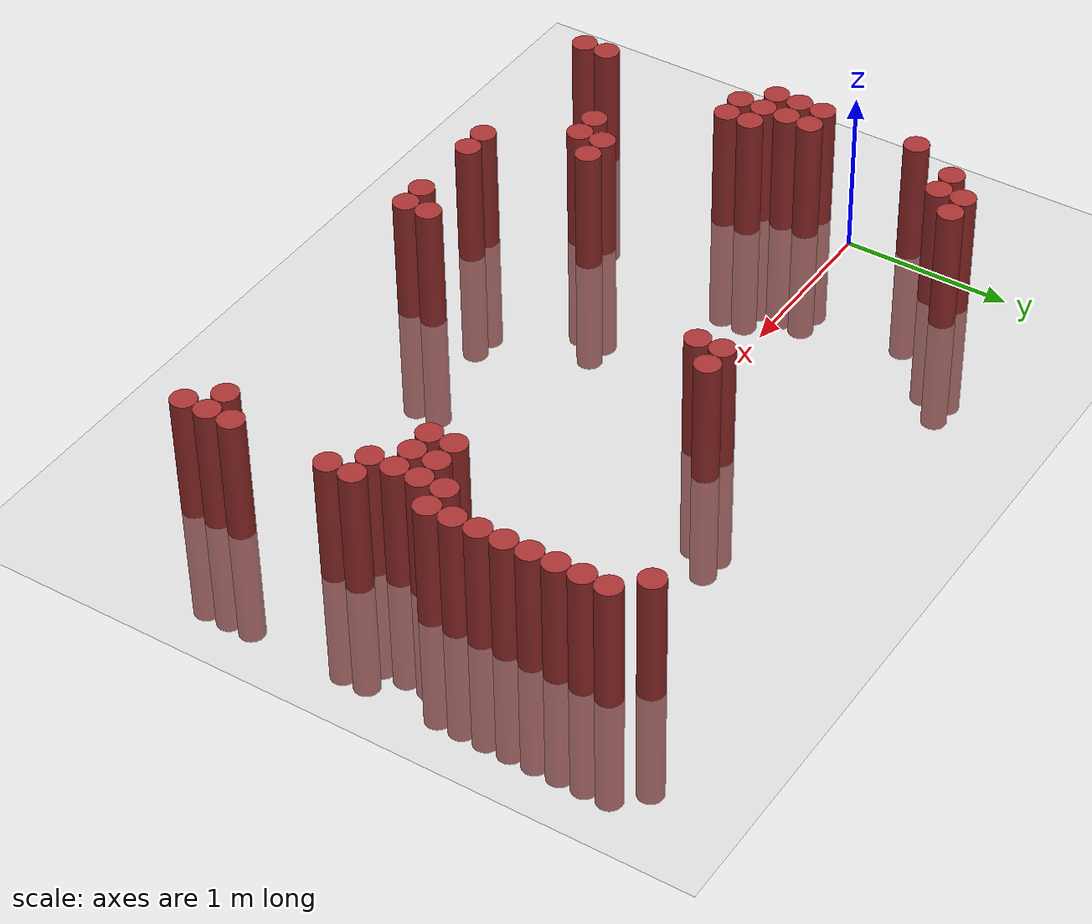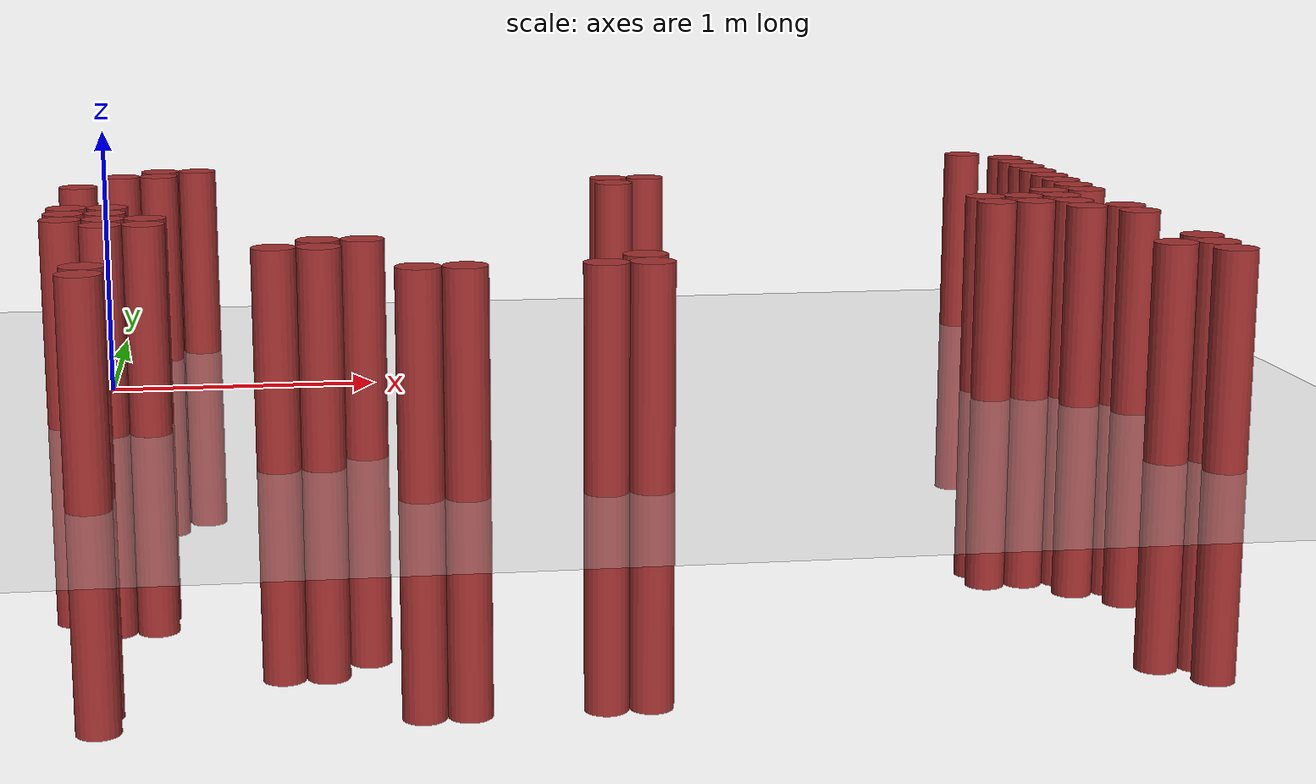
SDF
<sdf version="1.6">
 <world name="default">
  <model name="ground_plane">
   <static>1</static>
   <link name="link">
    <collision name="collision">
     <geometry><plane><normal>0 0 1</normal><size>100 100</size></plane></geometry>
     <surface><friction><ode><mu>100</mu><mu2>50</mu2></ode></friction></surface>
    </collision>
    <visual name="visual">
     <cast_shadows>0</cast_shadows>
     <geometry><plane><normal>0 0 1</normal><size>100 100</size></plane></geometry>
     <material>
      <script><uri>file://media/materials/scripts/gazebo.material</uri><name>Gazebo/Grey</name></script>
     </material>
    </visual>
   </link>
  </model>
  <model name="unit_cylinder_417">
   <static>1</static>
   <pose>-0.125000 -0.575000 0.000000 0.000000 0.000000 0.000000</pose>
   <link name="link">
    <inertial>
     <mass>1</mass>
     <inertia><ixx>0.145833</ixx><ixy>0</ixy><ixz>0</ixz><iyy>0.145833</iyy><iyz>0</iyz><izz>0.125</izz></inertia>
    </inertial>
    <collision name="collision">
     <geometry><cylinder><radius>0.075000</radius><length>1.5</length></cylinder></geometry>
    </collision>
    <visual name="visual">
     <geometry><cylinder><radius>0.075000</radius><length>1.5</length></cylinder></geometry>
     <material>
      <ambient>0.648000 0.192000 0.192000 1</ambient>
      <diffuse>0.648000 0.192000 0.192000 1</diffuse>
     </material>
     <material>
      <script><name>Gazebo/Grey</name><uri>file://media/materials/scripts/gazebo.material</uri></script>
     </material>
    </visual>
   </link>
  </model>
  <model name="unit_cylinder_418">
   <static>1</static>
   <pose>-0.125000 -0.425000 0.000000 0.000000 0.000000 0.000000</pose>
   <link name="link">
    <inertial>
     <mass>1</mass>
     <inertia><ixx>0.145833</ixx><ixy>0</ixy><ixz>0</ixz><iyy>0.145833</iyy><iyz>0</iyz><izz>0.125</izz></inertia>
    </inertial>
    <collision name="collision">
     <geometry><cylinder><radius>0.075000</radius><length>1.5</length></cylinder></geometry>
    </collision>
    <visual name="visual">
     <geometry><cylinder><radius>0.075000</radius><length>1.5</length></cylinder></geometry>
     <material>
      <ambient>0.648000 0.192000 0.192000 1</ambient>
      <diffuse>0.648000 0.192000 0.192000 1</diffuse>
     </material>
     <material>
      <script><name>Gazebo/Grey</name><uri>file://media/materials/scripts/gazebo.material</uri></script>
     </material>
    </visual>
   </link>
  </model>
  <model name="unit_cylinder_419">
   <static>1</static>
   <pose>-0.125000 -0.275000 0.000000 0.000000 0.000000 0.000000</pose>
   <link name="link">
    <inertial>
     <mass>1</mass>
     <inertia><ixx>0.145833</ixx><ixy>0</ixy><ixz>0</ixz><iyy>0.145833</iyy><iyz>0</iyz><izz>0.125</izz></inertia>
    </inertial>
    <collision name="collision">
     <geometry><cylinder><radius>0.075000</radius><length>1.5</length></cylinder></geometry>
    </collision>
    <visual name="visual">
     <geometry><cylinder><radius>0.075000</radius><length>1.5</length></cylinder></geometry>
     <material>
      <ambient>0.648000 0.192000 0.192000 1</ambient>
      <diffuse>0.648000 0.192000 0.192000 1</diffuse>
     </material>
     <material>
      <script><name>Gazebo/Grey</name><uri>file://media/materials/scripts/gazebo.material</uri></script>
     </material>
    </visual>
   </link>
  </model>
  <model name="unit_cylinder_420">
   <static>1</static>
   <pose>-0.125000 0.325000 0.000000 0.000000 0.000000 0.000000</pose>
   <link name="link">
    <inertial>
     <mass>1</mass>
     <inertia><ixx>0.145833</ixx><ixy>0</ixy><ixz>0</ixz><iyy>0.145833</iyy><iyz>0</iyz><izz>0.125</izz></inertia>
    </inertial>
    <collision name="collision">
     <geometry><cylinder><radius>0.075000</radius><length>1.5</length></cylinder></geometry>
    </collision>
    <visual name="visual">
     <geometry><cylinder><radius>0.075000</radius><length>1.5</length></cylinder></geometry>
     <material>
      <ambient>0.648000 0.192000 0.192000 1</ambient>
      <diffuse>0.648000 0.192000 0.192000 1</diffuse>
     </material>
     <material>
      <script><name>Gazebo/Grey</name><uri>file://media/materials/scripts/gazebo.material</uri></script>
     </material>
    </visual>
   </link>
  </model>
  <model name="unit_cylinder_428">
   <static>1</static>
   <pose>0.025000 -1.775000 0.000000 0.000000 0.000000 0.000000</pose>
   <link name="link">
    <inertial>
     <mass>1</mass>
     <inertia><ixx>0.145833</ixx><ixy>0</ixy><ixz>0</ixz><iyy>0.145833</iyy><iyz>0</iyz><izz>0.125</izz></inertia>
    </inertial>
    <collision name="collision">
     <geometry><cylinder><radius>0.075000</radius><length>1.5</length></cylinder></geometry>
    </collision>
    <visual name="visual">
     <geometry><cylinder><radius>0.075000</radius><length>1.5</length></cylinder></geometry>
     <material>
      <ambient>0.648000 0.192000 0.192000 1</ambient>
      <diffuse>0.648000 0.192000 0.192000 1</diffuse>
     </material>
     <material>
      <script><name>Gazebo/Grey</name><uri>file://media/materials/scripts/gazebo.material</uri></script>
     </material>
    </visual>
   </link>
  </model>
  <model name="unit_cylinder_429">
   <static>1</static>
   <pose>0.025000 -1.625000 0.000000 0.000000 0.000000 0.000000</pose>
   <link name="link">
    <inertial>
     <mass>1</mass>
     <inertia><ixx>0.145833</ixx><ixy>0</ixy><ixz>0</ixz><iyy>0.145833</iyy><iyz>0</iyz><izz>0.125</izz></inertia>
    </inertial>
    <collision name="collision">
     <geometry><cylinder><radius>0.075000</radius><length>1.5</length></cylinder></geometry>
    </collision>
    <visual name="visual">
     <geometry><cylinder><radius>0.075000</radius><length>1.5</length></cylinder></geometry>
     <material>
      <ambient>0.648000 0.192000 0.192000 1</ambient>
      <diffuse>0.648000 0.192000 0.192000 1</diffuse>
     </material>
     <material>
      <script><name>Gazebo/Grey</name><uri>file://media/materials/scripts/gazebo.material</uri></script>
     </material>
    </visual>
   </link>
  </model>
  <model name="unit_cylinder_430">
   <static>1</static>
   <pose>0.025000 -0.725000 0.000000 0.000000 0.000000 0.000000</pose>
   <link name="link">
    <inertial>
     <mass>1</mass>
     <inertia><ixx>0.145833</ixx><ixy>0</ixy><ixz>0</ixz><iyy>0.145833</iyy><iyz>0</iyz><izz>0.125</izz></inertia>
    </inertial>
    <collision name="collision">
     <geometry><cylinder><radius>0.075000</radius><length>1.5</length></cylinder></geometry>
    </collision>
    <visual name="visual">
     <geometry><cylinder><radius>0.075000</radius><length>1.5</length></cylinder></geometry>
     <material>
      <ambient>0.648000 0.192000 0.192000 1</ambient>
      <diffuse>0.648000 0.192000 0.192000 1</diffuse>
     </material>
     <material>
      <script><name>Gazebo/Grey</name><uri>file://media/materials/scripts/gazebo.material</uri></script>
     </material>
    </visual>
   </link>
  </model>
  <model name="unit_cylinder_431">
   <static>1</static>
   <pose>0.025000 -0.575000 0.000000 0.000000 0.000000 0.000000</pose>
   <link name="link">
    <inertial>
     <mass>1</mass>
     <inertia><ixx>0.145833</ixx><ixy>0</ixy><ixz>0</ixz><iyy>0.145833</iyy><iyz>0</iyz><izz>0.125</izz></inertia>
    </inertial>
    <collision name="collision">
     <geometry><cylinder><radius>0.075000</radius><length>1.5</length></cylinder></geometry>
    </collision>
    <visual name="visual">
     <geometry><cylinder><radius>0.075000</radius><length>1.5</length></cylinder></geometry>
     <material>
      <ambient>0.648000 0.192000 0.192000 1</ambient>
      <diffuse>0.648000 0.192000 0.192000 1</diffuse>
     </material>
     <material>
      <script><name>Gazebo/Grey</name><uri>file://media/materials/scripts/gazebo.material</uri></script>
     </material>
    </visual>
   </link>
  </model>
  <model name="unit_cylinder_432">
   <static>1</static>
   <pose>0.025000 -0.425000 0.000000 0.000000 0.000000 0.000000</pose>
   <link name="link">
    <inertial>
     <mass>1</mass>
     <inertia><ixx>0.145833</ixx><ixy>0</ixy><ixz>0</ixz><iyy>0.145833</iyy><iyz>0</iyz><izz>0.125</izz></inertia>
    </inertial>
    <collision name="collision">
     <geometry><cylinder><radius>0.075000</radius><length>1.5</length></cylinder></geometry>
    </collision>
    <visual name="visual">
     <geometry><cylinder><radius>0.075000</radius><length>1.5</length></cylinder></geometry>
     <material>
      <ambient>0.648000 0.192000 0.192000 1</ambient>
      <diffuse>0.648000 0.192000 0.192000 1</diffuse>
     </material>
     <material>
      <script><name>Gazebo/Grey</name><uri>file://media/materials/scripts/gazebo.material</uri></script>
     </material>
    </visual>
   </link>
  </model>
  <model name="unit_cylinder_433">
   <static>1</static>
   <pose>0.025000 -0.275000 0.000000 0.000000 0.000000 0.000000</pose>
   <link name="link">
    <inertial>
     <mass>1</mass>
     <inertia><ixx>0.145833</ixx><ixy>0</ixy><ixz>0</ixz><iyy>0.145833</iyy><iyz>0</iyz><izz>0.125</izz></inertia>
    </inertial>
    <collision name="collision">
     <geometry><cylinder><radius>0.075000</radius><length>1.5</length></cylinder></geometry>
    </collision>
    <visual name="visual">
     <geometry><cylinder><radius>0.075000</radius><length>1.5</length></cylinder></geometry>
     <material>
      <ambient>0.648000 0.192000 0.192000 1</ambient>
      <diffuse>0.648000 0.192000 0.192000 1</diffuse>
     </material>
     <material>
      <script><name>Gazebo/Grey</name><uri>file://media/materials/scripts/gazebo.material</uri></script>
     </material>
    </visual>
   </link>
  </model>
  <model name="unit_cylinder_434">
   <static>1</static>
   <pose>0.025000 0.625000 0.000000 0.000000 0.000000 0.000000</pose>
   <link name="link">
    <inertial>
     <mass>1</mass>
     <inertia><ixx>0.145833</ixx><ixy>0</ixy><ixz>0</ixz><iyy>0.145833</iyy><iyz>0</iyz><izz>0.125</izz></inertia>
    </inertial>
    <collision name="collision">
     <geometry><cylinder><radius>0.075000</radius><length>1.5</length></cylinder></geometry>
    </collision>
    <visual name="visual">
     <geometry><cylinder><radius>0.075000</radius><length>1.5</length></cylinder></geometry>
     <material>
      <ambient>0.648000 0.192000 0.192000 1</ambient>
      <diffuse>0.648000 0.192000 0.192000 1</diffuse>
     </material>
     <material>
      <script><name>Gazebo/Grey</name><uri>file://media/materials/scripts/gazebo.material</uri></script>
     </material>
    </visual>
   </link>
  </model>
  <model name="unit_cylinder_442">
   <static>1</static>
   <pose>0.175000 -0.725000 0.000000 0.000000 0.000000 0.000000</pose>
   <link name="link">
    <inertial>
     <mass>1</mass>
     <inertia><ixx>0.145833</ixx><ixy>0</ixy><ixz>0</ixz><iyy>0.145833</iyy><iyz>0</iyz><izz>0.125</izz></inertia>
    </inertial>
    <collision name="collision">
     <geometry><cylinder><radius>0.075000</radius><length>1.5</length></cylinder></geometry>
    </collision>
    <visual name="visual">
     <geometry><cylinder><radius>0.075000</radius><length>1.5</length></cylinder></geometry>
     <material>
      <ambient>0.648000 0.192000 0.192000 1</ambient>
      <diffuse>0.648000 0.192000 0.192000 1</diffuse>
     </material>
     <material>
      <script><name>Gazebo/Grey</name><uri>file://media/materials/scripts/gazebo.material</uri></script>
     </material>
    </visual>
   </link>
  </model>
  <model name="unit_cylinder_443">
   <static>1</static>
   <pose>0.175000 -0.575000 0.000000 0.000000 0.000000 0.000000</pose>
   <link name="link">
    <inertial>
     <mass>1</mass>
     <inertia><ixx>0.145833</ixx><ixy>0</ixy><ixz>0</ixz><iyy>0.145833</iyy><iyz>0</iyz><izz>0.125</izz></inertia>
    </inertial>
    <collision name="collision">
     <geometry><cylinder><radius>0.075000</radius><length>1.5</length></cylinder></geometry>
    </collision>
    <visual name="visual">
     <geometry><cylinder><radius>0.075000</radius><length>1.5</length></cylinder></geometry>
     <material>
      <ambient>0.648000 0.192000 0.192000 1</ambient>
      <diffuse>0.648000 0.192000 0.192000 1</diffuse>
     </material>
     <material>
      <script><name>Gazebo/Grey</name><uri>file://media/materials/scripts/gazebo.material</uri></script>
     </material>
    </visual>
   </link>
  </model>
  <model name="unit_cylinder_444">
   <static>1</static>
   <pose>0.175000 0.625000 0.000000 0.000000 0.000000 0.000000</pose>
   <link name="link">
    <inertial>
     <mass>1</mass>
     <inertia><ixx>0.145833</ixx><ixy>0</ixy><ixz>0</ixz><iyy>0.145833</iyy><iyz>0</iyz><izz>0.125</izz></inertia>
    </inertial>
    <collision name="collision">
     <geometry><cylinder><radius>0.075000</radius><length>1.5</length></cylinder></geometry>
    </collision>
    <visual name="visual">
     <geometry><cylinder><radius>0.075000</radius><length>1.5</length></cylinder></geometry>
     <material>
      <ambient>0.648000 0.192000 0.192000 1</ambient>
      <diffuse>0.648000 0.192000 0.192000 1</diffuse>
     </material>
     <material>
      <script><name>Gazebo/Grey</name><uri>file://media/materials/scripts/gazebo.material</uri></script>
     </material>
    </visual>
   </link>
  </model>
  <model name="unit_cylinder_445">
   <static>1</static>
   <pose>0.175000 0.775000 0.000000 0.000000 0.000000 0.000000</pose>
   <link name="link">
    <inertial>
     <mass>1</mass>
     <inertia><ixx>0.145833</ixx><ixy>0</ixy><ixz>0</ixz><iyy>0.145833</iyy><iyz>0</iyz><izz>0.125</izz></inertia>
    </inertial>
    <collision name="collision">
     <geometry><cylinder><radius>0.075000</radius><length>1.5</length></cylinder></geometry>
    </collision>
    <visual name="visual">
     <geometry><cylinder><radius>0.075000</radius><length>1.5</length></cylinder></geometry>
     <material>
      <ambient>0.648000 0.192000 0.192000 1</ambient>
      <diffuse>0.648000 0.192000 0.192000 1</diffuse>
     </material>
     <material>
      <script><name>Gazebo/Grey</name><uri>file://media/materials/scripts/gazebo.material</uri></script>
     </material>
    </visual>
   </link>
  </model>
  <model name="unit_cylinder_449">
   <static>1</static>
   <pose>0.325000 0.775000 0.000000 0.000000 0.000000 0.000000</pose>
   <link name="link">
    <inertial>
     <mass>1</mass>
     <inertia><ixx>0.145833</ixx><ixy>0</ixy><ixz>0</ixz><iyy>0.145833</iyy><iyz>0</iyz><izz>0.125</izz></inertia>
    </inertial>
    <collision name="collision">
     <geometry><cylinder><radius>0.075000</radius><length>1.5</length></cylinder></geometry>
    </collision>
    <visual name="visual">
     <geometry><cylinder><radius>0.075000</radius><length>1.5</length></cylinder></geometry>
     <material>
      <ambient>0.648000 0.192000 0.192000 1</ambient>
      <diffuse>0.648000 0.192000 0.192000 1</diffuse>
     </material>
     <material>
      <script><name>Gazebo/Grey</name><uri>file://media/materials/scripts/gazebo.material</uri></script>
     </material>
    </visual>
   </link>
  </model>
  <model name="unit_cylinder_453">
   <static>1</static>
   <pose>0.625000 -1.325000 0.000000 0.000000 0.000000 0.000000</pose>
   <link name="link">
    <inertial>
     <mass>1</mass>
     <inertia><ixx>0.145833</ixx><ixy>0</ixy><ixz>0</ixz><iyy>0.145833</iyy><iyz>0</iyz><izz>0.125</izz></inertia>
    </inertial>
    <collision name="collision">
     <geometry><cylinder><radius>0.075000</radius><length>1.5</length></cylinder></geometry>
    </collision>
    <visual name="visual">
     <geometry><cylinder><radius>0.075000</radius><length>1.5</length></cylinder></geometry>
     <material>
      <ambient>0.648000 0.192000 0.192000 1</ambient>
      <diffuse>0.648000 0.192000 0.192000 1</diffuse>
     </material>
     <material>
      <script><name>Gazebo/Grey</name><uri>file://media/materials/scripts/gazebo.material</uri></script>
     </material>
    </visual>
   </link>
  </model>
  <model name="unit_cylinder_456">
   <static>1</static>
   <pose>0.775000 -1.325000 0.000000 0.000000 0.000000 0.000000</pose>
   <link name="link">
    <inertial>
     <mass>1</mass>
     <inertia><ixx>0.145833</ixx><ixy>0</ixy><ixz>0</ixz><iyy>0.145833</iyy><iyz>0</iyz><izz>0.125</izz></inertia>
    </inertial>
    <collision name="collision">
     <geometry><cylinder><radius>0.075000</radius><length>1.5</length></cylinder></geometry>
    </collision>
    <visual name="visual">
     <geometry><cylinder><radius>0.075000</radius><length>1.5</length></cylinder></geometry>
     <material>
      <ambient>0.648000 0.192000 0.192000 1</ambient>
      <diffuse>0.648000 0.192000 0.192000 1</diffuse>
     </material>
     <material>
      <script><name>Gazebo/Grey</name><uri>file://media/materials/scripts/gazebo.material</uri></script>
     </material>
    </visual>
   </link>
  </model>
  <model name="unit_cylinder_457">
   <static>1</static>
   <pose>0.775000 -1.175000 0.000000 0.000000 0.000000 0.000000</pose>
   <link name="link">
    <inertial>
     <mass>1</mass>
     <inertia><ixx>0.145833</ixx><ixy>0</ixy><ixz>0</ixz><iyy>0.145833</iyy><iyz>0</iyz><izz>0.125</izz></inertia>
    </inertial>
    <collision name="collision">
     <geometry><cylinder><radius>0.075000</radius><length>1.5</length></cylinder></geometry>
    </collision>
    <visual name="visual">
     <geometry><cylinder><radius>0.075000</radius><length>1.5</length></cylinder></geometry>
     <material>
      <ambient>0.648000 0.192000 0.192000 1</ambient>
      <diffuse>0.648000 0.192000 0.192000 1</diffuse>
     </material>
     <material>
      <script><name>Gazebo/Grey</name><uri>file://media/materials/scripts/gazebo.material</uri></script>
     </material>
    </visual>
   </link>
  </model>
  <model name="unit_cylinder_459">
   <static>1</static>
   <pose>0.925000 -1.175000 0.000000 0.000000 0.000000 0.000000</pose>
   <link name="link">
    <inertial>
     <mass>1</mass>
     <inertia><ixx>0.145833</ixx><ixy>0</ixy><ixz>0</ixz><iyy>0.145833</iyy><iyz>0</iyz><izz>0.125</izz></inertia>
    </inertial>
    <collision name="collision">
     <geometry><cylinder><radius>0.075000</radius><length>1.5</length></cylinder></geometry>
    </collision>
    <visual name="visual">
     <geometry><cylinder><radius>0.075000</radius><length>1.5</length></cylinder></geometry>
     <material>
      <ambient>0.648000 0.192000 0.192000 1</ambient>
      <diffuse>0.648000 0.192000 0.192000 1</diffuse>
     </material>
     <material>
      <script><name>Gazebo/Grey</name><uri>file://media/materials/scripts/gazebo.material</uri></script>
     </material>
    </visual>
   </link>
  </model>
  <model name="unit_cylinder_460">
   <static>1</static>
   <pose>1.075000 -1.775000 0.000000 0.000000 0.000000 0.000000</pose>
   <link name="link">
    <inertial>
     <mass>1</mass>
     <inertia><ixx>0.145833</ixx><ixy>0</ixy><ixz>0</ixz><iyy>0.145833</iyy><iyz>0</iyz><izz>0.125</izz></inertia>
    </inertial>
    <collision name="collision">
     <geometry><cylinder><radius>0.075000</radius><length>1.5</length></cylinder></geometry>
    </collision>
    <visual name="visual">
     <geometry><cylinder><radius>0.075000</radius><length>1.5</length></cylinder></geometry>
     <material>
      <ambient>0.648000 0.192000 0.192000 1</ambient>
      <diffuse>0.648000 0.192000 0.192000 1</diffuse>
     </material>
     <material>
      <script><name>Gazebo/Grey</name><uri>file://media/materials/scripts/gazebo.material</uri></script>
     </material>
    </visual>
   </link>
  </model>
  <model name="unit_cylinder_462">
   <static>1</static>
   <pose>1.225000 -1.775000 0.000000 0.000000 0.000000 0.000000</pose>
   <link name="link">
    <inertial>
     <mass>1</mass>
     <inertia><ixx>0.145833</ixx><ixy>0</ixy><ixz>0</ixz><iyy>0.145833</iyy><iyz>0</iyz><izz>0.125</izz></inertia>
    </inertial>
    <collision name="collision">
     <geometry><cylinder><radius>0.075000</radius><length>1.5</length></cylinder></geometry>
    </collision>
    <visual name="visual">
     <geometry><cylinder><radius>0.075000</radius><length>1.5</length></cylinder></geometry>
     <material>
      <ambient>0.648000 0.192000 0.192000 1</ambient>
      <diffuse>0.648000 0.192000 0.192000 1</diffuse>
     </material>
     <material>
      <script><name>Gazebo/Grey</name><uri>file://media/materials/scripts/gazebo.material</uri></script>
     </material>
    </visual>
   </link>
  </model>
  <model name="unit_cylinder_464">
   <static>1</static>
   <pose>1.675000 -1.775000 0.000000 0.000000 0.000000 0.000000</pose>
   <link name="link">
    <inertial>
     <mass>1</mass>
     <inertia><ixx>0.145833</ixx><ixy>0</ixy><ixz>0</ixz><iyy>0.145833</iyy><iyz>0</iyz><izz>0.125</izz></inertia>
    </inertial>
    <collision name="collision">
     <geometry><cylinder><radius>0.075000</radius><length>1.5</length></cylinder></geometry>
    </collision>
    <visual name="visual">
     <geometry><cylinder><radius>0.075000</radius><length>1.5</length></cylinder></geometry>
     <material>
      <ambient>0.648000 0.192000 0.192000 1</ambient>
      <diffuse>0.648000 0.192000 0.192000 1</diffuse>
     </material>
     <material>
      <script><name>Gazebo/Grey</name><uri>file://media/materials/scripts/gazebo.material</uri></script>
     </material>
    </visual>
   </link>
  </model>
  <model name="unit_cylinder_466">
   <static>1</static>
   <pose>1.825000 -1.775000 0.000000 0.000000 0.000000 0.000000</pose>
   <link name="link">
    <inertial>
     <mass>1</mass>
     <inertia><ixx>0.145833</ixx><ixy>0</ixy><ixz>0</ixz><iyy>0.145833</iyy><iyz>0</iyz><izz>0.125</izz></inertia>
    </inertial>
    <collision name="collision">
     <geometry><cylinder><radius>0.075000</radius><length>1.5</length></cylinder></geometry>
    </collision>
    <visual name="visual">
     <geometry><cylinder><radius>0.075000</radius><length>1.5</length></cylinder></geometry>
     <material>
      <ambient>0.648000 0.192000 0.192000 1</ambient>
      <diffuse>0.648000 0.192000 0.192000 1</diffuse>
     </material>
     <material>
      <script><name>Gazebo/Grey</name><uri>file://media/materials/scripts/gazebo.material</uri></script>
     </material>
    </visual>
   </link>
  </model>
  <model name="unit_cylinder_467">
   <static>1</static>
   <pose>1.825000 -1.625000 0.000000 0.000000 0.000000 0.000000</pose>
   <link name="link">
    <inertial>
     <mass>1</mass>
     <inertia><ixx>0.145833</ixx><ixy>0</ixy><ixz>0</ixz><iyy>0.145833</iyy><iyz>0</iyz><izz>0.125</izz></inertia>
    </inertial>
    <collision name="collision">
     <geometry><cylinder><radius>0.075000</radius><length>1.5</length></cylinder></geometry>
    </collision>
    <visual name="visual">
     <geometry><cylinder><radius>0.075000</radius><length>1.5</length></cylinder></geometry>
     <material>
      <ambient>0.648000 0.192000 0.192000 1</ambient>
      <diffuse>0.648000 0.192000 0.192000 1</diffuse>
     </material>
     <material>
      <script><name>Gazebo/Grey</name><uri>file://media/materials/scripts/gazebo.material</uri></script>
     </material>
    </visual>
   </link>
  </model>
  <model name="unit_cylinder_468">
   <static>1</static>
   <pose>1.975000 0.175000 0.000000 0.000000 0.000000 0.000000</pose>
   <link name="link">
    <inertial>
     <mass>1</mass>
     <inertia><ixx>0.145833</ixx><ixy>0</ixy><ixz>0</ixz><iyy>0.145833</iyy><iyz>0</iyz><izz>0.125</izz></inertia>
    </inertial>
    <collision name="collision">
     <geometry><cylinder><radius>0.075000</radius><length>1.5</length></cylinder></geometry>
    </collision>
    <visual name="visual">
     <geometry><cylinder><radius>0.075000</radius><length>1.5</length></cylinder></geometry>
     <material>
      <ambient>0.648000 0.192000 0.192000 1</ambient>
      <diffuse>0.648000 0.192000 0.192000 1</diffuse>
     </material>
     <material>
      <script><name>Gazebo/Grey</name><uri>file://media/materials/scripts/gazebo.material</uri></script>
     </material>
    </visual>
   </link>
  </model>
  <model name="unit_cylinder_469">
   <static>1</static>
   <pose>1.975000 0.325000 0.000000 0.000000 0.000000 0.000000</pose>
   <link name="link">
    <inertial>
     <mass>1</mass>
     <inertia><ixx>0.145833</ixx><ixy>0</ixy><ixz>0</ixz><iyy>0.145833</iyy><iyz>0</iyz><izz>0.125</izz></inertia>
    </inertial>
    <collision name="collision">
     <geometry><cylinder><radius>0.075000</radius><length>1.5</length></cylinder></geometry>
    </collision>
    <visual name="visual">
     <geometry><cylinder><radius>0.075000</radius><length>1.5</length></cylinder></geometry>
     <material>
      <ambient>0.648000 0.192000 0.192000 1</ambient>
      <diffuse>0.648000 0.192000 0.192000 1</diffuse>
     </material>
     <material>
      <script><name>Gazebo/Grey</name><uri>file://media/materials/scripts/gazebo.material</uri></script>
     </material>
    </visual>
   </link>
  </model>
  <model name="unit_cylinder_474">
   <static>1</static>
   <pose>2.125000 0.325000 0.000000 0.000000 0.000000 0.000000</pose>
   <link name="link">
    <inertial>
     <mass>1</mass>
     <inertia><ixx>0.145833</ixx><ixy>0</ixy><ixz>0</ixz><iyy>0.145833</iyy><iyz>0</iyz><izz>0.125</izz></inertia>
    </inertial>
    <collision name="collision">
     <geometry><cylinder><radius>0.075000</radius><length>1.5</length></cylinder></geometry>
    </collision>
    <visual name="visual">
     <geometry><cylinder><radius>0.075000</radius><length>1.5</length></cylinder></geometry>
     <material>
      <ambient>0.648000 0.192000 0.192000 1</ambient>
      <diffuse>0.648000 0.192000 0.192000 1</diffuse>
     </material>
     <material>
      <script><name>Gazebo/Grey</name><uri>file://media/materials/scripts/gazebo.material</uri></script>
     </material>
    </visual>
   </link>
  </model>
  <model name="unit_cylinder_510">
   <static>1</static>
   <pose>3.325000 -0.575000 0.000000 0.000000 0.000000 0.000000</pose>
   <link name="link">
    <inertial>
     <mass>1</mass>
     <inertia><ixx>0.145833</ixx><ixy>0</ixy><ixz>0</ixz><iyy>0.145833</iyy><iyz>0</iyz><izz>0.125</izz></inertia>
    </inertial>
    <collision name="collision">
     <geometry><cylinder><radius>0.075000</radius><length>1.5</length></cylinder></geometry>
    </collision>
    <visual name="visual">
     <geometry><cylinder><radius>0.075000</radius><length>1.5</length></cylinder></geometry>
     <material>
      <ambient>0.648000 0.192000 0.192000 1</ambient>
      <diffuse>0.648000 0.192000 0.192000 1</diffuse>
     </material>
     <material>
      <script><name>Gazebo/Grey</name><uri>file://media/materials/scripts/gazebo.material</uri></script>
     </material>
    </visual>
   </link>
  </model>
  <model name="unit_cylinder_511">
   <static>1</static>
   <pose>3.325000 -0.425000 0.000000 0.000000 0.000000 0.000000</pose>
   <link name="link">
    <inertial>
     <mass>1</mass>
     <inertia><ixx>0.145833</ixx><ixy>0</ixy><ixz>0</ixz><iyy>0.145833</iyy><iyz>0</iyz><izz>0.125</izz></inertia>
    </inertial>
    <collision name="collision">
     <geometry><cylinder><radius>0.075000</radius><length>1.5</length></cylinder></geometry>
    </collision>
    <visual name="visual">
     <geometry><cylinder><radius>0.075000</radius><length>1.5</length></cylinder></geometry>
     <material>
      <ambient>0.648000 0.192000 0.192000 1</ambient>
      <diffuse>0.648000 0.192000 0.192000 1</diffuse>
     </material>
     <material>
      <script><name>Gazebo/Grey</name><uri>file://media/materials/scripts/gazebo.material</uri></script>
     </material>
    </visual>
   </link>
  </model>
  <model name="unit_cylinder_518">
   <static>1</static>
   <pose>3.475000 -0.575000 0.000000 0.000000 0.000000 0.000000</pose>
   <link name="link">
    <inertial>
     <mass>1</mass>
     <inertia><ixx>0.145833</ixx><ixy>0</ixy><ixz>0</ixz><iyy>0.145833</iyy><iyz>0</iyz><izz>0.125</izz></inertia>
    </inertial>
    <collision name="collision">
     <geometry><cylinder><radius>0.075000</radius><length>1.5</length></cylinder></geometry>
    </collision>
    <visual name="visual">
     <geometry><cylinder><radius>0.075000</radius><length>1.5</length></cylinder></geometry>
     <material>
      <ambient>0.648000 0.192000 0.192000 1</ambient>
      <diffuse>0.648000 0.192000 0.192000 1</diffuse>
     </material>
     <material>
      <script><name>Gazebo/Grey</name><uri>file://media/materials/scripts/gazebo.material</uri></script>
     </material>
    </visual>
   </link>
  </model>
  <model name="unit_cylinder_519">
   <static>1</static>
   <pose>3.475000 -0.425000 0.000000 0.000000 0.000000 0.000000</pose>
   <link name="link">
    <inertial>
     <mass>1</mass>
     <inertia><ixx>0.145833</ixx><ixy>0</ixy><ixz>0</ixz><iyy>0.145833</iyy><iyz>0</iyz><izz>0.125</izz></inertia>
    </inertial>
    <collision name="collision">
     <geometry><cylinder><radius>0.075000</radius><length>1.5</length></cylinder></geometry>
    </collision>
    <visual name="visual">
     <geometry><cylinder><radius>0.075000</radius><length>1.5</length></cylinder></geometry>
     <material>
      <ambient>0.648000 0.192000 0.192000 1</ambient>
      <diffuse>0.648000 0.192000 0.192000 1</diffuse>
     </material>
     <material>
      <script><name>Gazebo/Grey</name><uri>file://media/materials/scripts/gazebo.material</uri></script>
     </material>
    </visual>
   </link>
  </model>
  <model name="unit_cylinder_524">
   <static>1</static>
   <pose>3.625000 -1.625000 0.000000 0.000000 0.000000 0.000000</pose>
   <link name="link">
    <inertial>
     <mass>1</mass>
     <inertia><ixx>0.145833</ixx><ixy>0</ixy><ixz>0</ixz><iyy>0.145833</iyy><iyz>0</iyz><izz>0.125</izz></inertia>
    </inertial>
    <collision name="collision">
     <geometry><cylinder><radius>0.075000</radius><length>1.5</length></cylinder></geometry>
    </collision>
    <visual name="visual">
     <geometry><cylinder><radius>0.075000</radius><length>1.5</length></cylinder></geometry>
     <material>
      <ambient>0.648000 0.192000 0.192000 1</ambient>
      <diffuse>0.648000 0.192000 0.192000 1</diffuse>
     </material>
     <material>
      <script><name>Gazebo/Grey</name><uri>file://media/materials/scripts/gazebo.material</uri></script>
     </material>
    </visual>
   </link>
  </model>
  <model name="unit_cylinder_525">
   <static>1</static>
   <pose>3.625000 -0.725000 0.000000 0.000000 0.000000 0.000000</pose>
   <link name="link">
    <inertial>
     <mass>1</mass>
     <inertia><ixx>0.145833</ixx><ixy>0</ixy><ixz>0</ixz><iyy>0.145833</iyy><iyz>0</iyz><izz>0.125</izz></inertia>
    </inertial>
    <collision name="collision">
     <geometry><cylinder><radius>0.075000</radius><length>1.5</length></cylinder></geometry>
    </collision>
    <visual name="visual">
     <geometry><cylinder><radius>0.075000</radius><length>1.5</length></cylinder></geometry>
     <material>
      <ambient>0.648000 0.192000 0.192000 1</ambient>
      <diffuse>0.648000 0.192000 0.192000 1</diffuse>
     </material>
     <material>
      <script><name>Gazebo/Grey</name><uri>file://media/materials/scripts/gazebo.material</uri></script>
     </material>
    </visual>
   </link>
  </model>
  <model name="unit_cylinder_526">
   <static>1</static>
   <pose>3.625000 -0.575000 0.000000 0.000000 0.000000 0.000000</pose>
   <link name="link">
    <inertial>
     <mass>1</mass>
     <inertia><ixx>0.145833</ixx><ixy>0</ixy><ixz>0</ixz><iyy>0.145833</iyy><iyz>0</iyz><izz>0.125</izz></inertia>
    </inertial>
    <collision name="collision">
     <geometry><cylinder><radius>0.075000</radius><length>1.5</length></cylinder></geometry>
    </collision>
    <visual name="visual">
     <geometry><cylinder><radius>0.075000</radius><length>1.5</length></cylinder></geometry>
     <material>
      <ambient>0.648000 0.192000 0.192000 1</ambient>
      <diffuse>0.648000 0.192000 0.192000 1</diffuse>
     </material>
     <material>
      <script><name>Gazebo/Grey</name><uri>file://media/materials/scripts/gazebo.material</uri></script>
     </material>
    </visual>
   </link>
  </model>
  <model name="unit_cylinder_527">
   <static>1</static>
   <pose>3.625000 -0.425000 0.000000 0.000000 0.000000 0.000000</pose>
   <link name="link">
    <inertial>
     <mass>1</mass>
     <inertia><ixx>0.145833</ixx><ixy>0</ixy><ixz>0</ixz><iyy>0.145833</iyy><iyz>0</iyz><izz>0.125</izz></inertia>
    </inertial>
    <collision name="collision">
     <geometry><cylinder><radius>0.075000</radius><length>1.5</length></cylinder></geometry>
    </collision>
    <visual name="visual">
     <geometry><cylinder><radius>0.075000</radius><length>1.5</length></cylinder></geometry>
     <material>
      <ambient>0.648000 0.192000 0.192000 1</ambient>
      <diffuse>0.648000 0.192000 0.192000 1</diffuse>
     </material>
     <material>
      <script><name>Gazebo/Grey</name><uri>file://media/materials/scripts/gazebo.material</uri></script>
     </material>
    </visual>
   </link>
  </model>
  <model name="unit_cylinder_528">
   <static>1</static>
   <pose>3.625000 -0.275000 0.000000 0.000000 0.000000 0.000000</pose>
   <link name="link">
    <inertial>
     <mass>1</mass>
     <inertia><ixx>0.145833</ixx><ixy>0</ixy><ixz>0</ixz><iyy>0.145833</iyy><iyz>0</iyz><izz>0.125</izz></inertia>
    </inertial>
    <collision name="collision">
     <geometry><cylinder><radius>0.075000</radius><length>1.5</length></cylinder></geometry>
    </collision>
    <visual name="visual">
     <geometry><cylinder><radius>0.075000</radius><length>1.5</length></cylinder></geometry>
     <material>
      <ambient>0.648000 0.192000 0.192000 1</ambient>
      <diffuse>0.648000 0.192000 0.192000 1</diffuse>
     </material>
     <material>
      <script><name>Gazebo/Grey</name><uri>file://media/materials/scripts/gazebo.material</uri></script>
     </material>
    </visual>
   </link>
  </model>
  <model name="unit_cylinder_529">
   <static>1</static>
   <pose>3.625000 0.925000 0.000000 0.000000 0.000000 0.000000</pose>
   <link name="link">
    <inertial>
     <mass>1</mass>
     <inertia><ixx>0.145833</ixx><ixy>0</ixy><ixz>0</ixz><iyy>0.145833</iyy><iyz>0</iyz><izz>0.125</izz></inertia>
    </inertial>
    <collision name="collision">
     <geometry><cylinder><radius>0.075000</radius><length>1.5</length></cylinder></geometry>
    </collision>
    <visual name="visual">
     <geometry><cylinder><radius>0.075000</radius><length>1.5</length></cylinder></geometry>
     <material>
      <ambient>0.648000 0.192000 0.192000 1</ambient>
      <diffuse>0.648000 0.192000 0.192000 1</diffuse>
     </material>
     <material>
      <script><name>Gazebo/Grey</name><uri>file://media/materials/scripts/gazebo.material</uri></script>
     </material>
    </visual>
   </link>
  </model>
  <model name="unit_cylinder_536">
   <static>1</static>
   <pose>3.775000 -1.775000 0.000000 0.000000 0.000000 0.000000</pose>
   <link name="link">
    <inertial>
     <mass>1</mass>
     <inertia><ixx>0.145833</ixx><ixy>0</ixy><ixz>0</ixz><iyy>0.145833</iyy><iyz>0</iyz><izz>0.125</izz></inertia>
    </inertial>
    <collision name="collision">
     <geometry><cylinder><radius>0.075000</radius><length>1.5</length></cylinder></geometry>
    </collision>
    <visual name="visual">
     <geometry><cylinder><radius>0.075000</radius><length>1.5</length></cylinder></geometry>
     <material>
      <ambient>0.648000 0.192000 0.192000 1</ambient>
      <diffuse>0.648000 0.192000 0.192000 1</diffuse>
     </material>
     <material>
      <script><name>Gazebo/Grey</name><uri>file://media/materials/scripts/gazebo.material</uri></script>
     </material>
    </visual>
   </link>
  </model>
  <model name="unit_cylinder_537">
   <static>1</static>
   <pose>3.775000 -1.625000 0.000000 0.000000 0.000000 0.000000</pose>
   <link name="link">
    <inertial>
     <mass>1</mass>
     <inertia><ixx>0.145833</ixx><ixy>0</ixy><ixz>0</ixz><iyy>0.145833</iyy><iyz>0</iyz><izz>0.125</izz></inertia>
    </inertial>
    <collision name="collision">
     <geometry><cylinder><radius>0.075000</radius><length>1.5</length></cylinder></geometry>
    </collision>
    <visual name="visual">
     <geometry><cylinder><radius>0.075000</radius><length>1.5</length></cylinder></geometry>
     <material>
      <ambient>0.648000 0.192000 0.192000 1</ambient>
      <diffuse>0.648000 0.192000 0.192000 1</diffuse>
     </material>
     <material>
      <script><name>Gazebo/Grey</name><uri>file://media/materials/scripts/gazebo.material</uri></script>
     </material>
    </visual>
   </link>
  </model>
  <model name="unit_cylinder_538">
   <static>1</static>
   <pose>3.775000 -1.475000 0.000000 0.000000 0.000000 0.000000</pose>
   <link name="link">
    <inertial>
     <mass>1</mass>
     <inertia><ixx>0.145833</ixx><ixy>0</ixy><ixz>0</ixz><iyy>0.145833</iyy><iyz>0</iyz><izz>0.125</izz></inertia>
    </inertial>
    <collision name="collision">
     <geometry><cylinder><radius>0.075000</radius><length>1.5</length></cylinder></geometry>
    </collision>
    <visual name="visual">
     <geometry><cylinder><radius>0.075000</radius><length>1.5</length></cylinder></geometry>
     <material>
      <ambient>0.648000 0.192000 0.192000 1</ambient>
      <diffuse>0.648000 0.192000 0.192000 1</diffuse>
     </material>
     <material>
      <script><name>Gazebo/Grey</name><uri>file://media/materials/scripts/gazebo.material</uri></script>
     </material>
    </visual>
   </link>
  </model>
  <model name="unit_cylinder_539">
   <static>1</static>
   <pose>3.775000 -0.875000 0.000000 0.000000 0.000000 0.000000</pose>
   <link name="link">
    <inertial>
     <mass>1</mass>
     <inertia><ixx>0.145833</ixx><ixy>0</ixy><ixz>0</ixz><iyy>0.145833</iyy><iyz>0</iyz><izz>0.125</izz></inertia>
    </inertial>
    <collision name="collision">
     <geometry><cylinder><radius>0.075000</radius><length>1.5</length></cylinder></geometry>
    </collision>
    <visual name="visual">
     <geometry><cylinder><radius>0.075000</radius><length>1.5</length></cylinder></geometry>
     <material>
      <ambient>0.648000 0.192000 0.192000 1</ambient>
      <diffuse>0.648000 0.192000 0.192000 1</diffuse>
     </material>
     <material>
      <script><name>Gazebo/Grey</name><uri>file://media/materials/scripts/gazebo.material</uri></script>
     </material>
    </visual>
   </link>
  </model>
  <model name="unit_cylinder_540">
   <static>1</static>
   <pose>3.775000 -0.725000 0.000000 0.000000 0.000000 0.000000</pose>
   <link name="link">
    <inertial>
     <mass>1</mass>
     <inertia><ixx>0.145833</ixx><ixy>0</ixy><ixz>0</ixz><iyy>0.145833</iyy><iyz>0</iyz><izz>0.125</izz></inertia>
    </inertial>
    <collision name="collision">
     <geometry><cylinder><radius>0.075000</radius><length>1.5</length></cylinder></geometry>
    </collision>
    <visual name="visual">
     <geometry><cylinder><radius>0.075000</radius><length>1.5</length></cylinder></geometry>
     <material>
      <ambient>0.648000 0.192000 0.192000 1</ambient>
      <diffuse>0.648000 0.192000 0.192000 1</diffuse>
     </material>
     <material>
      <script><name>Gazebo/Grey</name><uri>file://media/materials/scripts/gazebo.material</uri></script>
     </material>
    </visual>
   </link>
  </model>
  <model name="unit_cylinder_541">
   <static>1</static>
   <pose>3.775000 -0.275000 0.000000 0.000000 0.000000 0.000000</pose>
   <link name="link">
    <inertial>
     <mass>1</mass>
     <inertia><ixx>0.145833</ixx><ixy>0</ixy><ixz>0</ixz><iyy>0.145833</iyy><iyz>0</iyz><izz>0.125</izz></inertia>
    </inertial>
    <collision name="collision">
     <geometry><cylinder><radius>0.075000</radius><length>1.5</length></cylinder></geometry>
    </collision>
    <visual name="visual">
     <geometry><cylinder><radius>0.075000</radius><length>1.5</length></cylinder></geometry>
     <material>
      <ambient>0.648000 0.192000 0.192000 1</ambient>
      <diffuse>0.648000 0.192000 0.192000 1</diffuse>
     </material>
     <material>
      <script><name>Gazebo/Grey</name><uri>file://media/materials/scripts/gazebo.material</uri></script>
     </material>
    </visual>
   </link>
  </model>
  <model name="unit_cylinder_542">
   <static>1</static>
   <pose>3.775000 -0.125000 0.000000 0.000000 0.000000 0.000000</pose>
   <link name="link">
    <inertial>
     <mass>1</mass>
     <inertia><ixx>0.145833</ixx><ixy>0</ixy><ixz>0</ixz><iyy>0.145833</iyy><iyz>0</iyz><izz>0.125</izz></inertia>
    </inertial>
    <collision name="collision">
     <geometry><cylinder><radius>0.075000</radius><length>1.5</length></cylinder></geometry>
    </collision>
    <visual name="visual">
     <geometry><cylinder><radius>0.075000</radius><length>1.5</length></cylinder></geometry>
     <material>
      <ambient>0.648000 0.192000 0.192000 1</ambient>
      <diffuse>0.648000 0.192000 0.192000 1</diffuse>
     </material>
     <material>
      <script><name>Gazebo/Grey</name><uri>file://media/materials/scripts/gazebo.material</uri></script>
     </material>
    </visual>
   </link>
  </model>
  <model name="unit_cylinder_543">
   <static>1</static>
   <pose>3.775000 0.025000 0.000000 0.000000 0.000000 0.000000</pose>
   <link name="link">
    <inertial>
     <mass>1</mass>
     <inertia><ixx>0.145833</ixx><ixy>0</ixy><ixz>0</ixz><iyy>0.145833</iyy><iyz>0</iyz><izz>0.125</izz></inertia>
    </inertial>
    <collision name="collision">
     <geometry><cylinder><radius>0.075000</radius><length>1.5</length></cylinder></geometry>
    </collision>
    <visual name="visual">
     <geometry><cylinder><radius>0.075000</radius><length>1.5</length></cylinder></geometry>
     <material>
      <ambient>0.648000 0.192000 0.192000 1</ambient>
      <diffuse>0.648000 0.192000 0.192000 1</diffuse>
     </material>
     <material>
      <script><name>Gazebo/Grey</name><uri>file://media/materials/scripts/gazebo.material</uri></script>
     </material>
    </visual>
   </link>
  </model>
  <model name="unit_cylinder_544">
   <static>1</static>
   <pose>3.775000 0.175000 0.000000 0.000000 0.000000 0.000000</pose>
   <link name="link">
    <inertial>
     <mass>1</mass>
     <inertia><ixx>0.145833</ixx><ixy>0</ixy><ixz>0</ixz><iyy>0.145833</iyy><iyz>0</iyz><izz>0.125</izz></inertia>
    </inertial>
    <collision name="collision">
     <geometry><cylinder><radius>0.075000</radius><length>1.5</length></cylinder></geometry>
    </collision>
    <visual name="visual">
     <geometry><cylinder><radius>0.075000</radius><length>1.5</length></cylinder></geometry>
     <material>
      <ambient>0.648000 0.192000 0.192000 1</ambient>
      <diffuse>0.648000 0.192000 0.192000 1</diffuse>
     </material>
     <material>
      <script><name>Gazebo/Grey</name><uri>file://media/materials/scripts/gazebo.material</uri></script>
     </material>
    </visual>
   </link>
  </model>
  <model name="unit_cylinder_545">
   <static>1</static>
   <pose>3.775000 0.325000 0.000000 0.000000 0.000000 0.000000</pose>
   <link name="link">
    <inertial>
     <mass>1</mass>
     <inertia><ixx>0.145833</ixx><ixy>0</ixy><ixz>0</ixz><iyy>0.145833</iyy><iyz>0</iyz><izz>0.125</izz></inertia>
    </inertial>
    <collision name="collision">
     <geometry><cylinder><radius>0.075000</radius><length>1.5</length></cylinder></geometry>
    </collision>
    <visual name="visual">
     <geometry><cylinder><radius>0.075000</radius><length>1.5</length></cylinder></geometry>
     <material>
      <ambient>0.648000 0.192000 0.192000 1</ambient>
      <diffuse>0.648000 0.192000 0.192000 1</diffuse>
     </material>
     <material>
      <script><name>Gazebo/Grey</name><uri>file://media/materials/scripts/gazebo.material</uri></script>
     </material>
    </visual>
   </link>
  </model>
  <model name="unit_cylinder_546">
   <static>1</static>
   <pose>3.775000 0.475000 0.000000 0.000000 0.000000 0.000000</pose>
   <link name="link">
    <inertial>
     <mass>1</mass>
     <inertia><ixx>0.145833</ixx><ixy>0</ixy><ixz>0</ixz><iyy>0.145833</iyy><iyz>0</iyz><izz>0.125</izz></inertia>
    </inertial>
    <collision name="collision">
     <geometry><cylinder><radius>0.075000</radius><length>1.5</length></cylinder></geometry>
    </collision>
    <visual name="visual">
     <geometry><cylinder><radius>0.075000</radius><length>1.5</length></cylinder></geometry>
     <material>
      <ambient>0.648000 0.192000 0.192000 1</ambient>
      <diffuse>0.648000 0.192000 0.192000 1</diffuse>
     </material>
     <material>
      <script><name>Gazebo/Grey</name><uri>file://media/materials/scripts/gazebo.material</uri></script>
     </material>
    </visual>
   </link>
  </model>
  <model name="unit_cylinder_547">
   <static>1</static>
   <pose>3.775000 0.625000 0.000000 0.000000 0.000000 0.000000</pose>
   <link name="link">
    <inertial>
     <mass>1</mass>
     <inertia><ixx>0.145833</ixx><ixy>0</ixy><ixz>0</ixz><iyy>0.145833</iyy><iyz>0</iyz><izz>0.125</izz></inertia>
    </inertial>
    <collision name="collision">
     <geometry><cylinder><radius>0.075000</radius><length>1.5</length></cylinder></geometry>
    </collision>
    <visual name="visual">
     <geometry><cylinder><radius>0.075000</radius><length>1.5</length></cylinder></geometry>
     <material>
      <ambient>0.648000 0.192000 0.192000 1</ambient>
      <diffuse>0.648000 0.192000 0.192000 1</diffuse>
     </material>
     <material>
      <script><name>Gazebo/Grey</name><uri>file://media/materials/scripts/gazebo.material</uri></script>
     </material>
    </visual>
   </link>
  </model>
  <model name="unit_cylinder_548">
   <static>1</static>
   <pose>3.775000 0.775000 0.000000 0.000000 0.000000 0.000000</pose>
   <link name="link">
    <inertial>
     <mass>1</mass>
     <inertia><ixx>0.145833</ixx><ixy>0</ixy><ixz>0</ixz><iyy>0.145833</iyy><iyz>0</iyz><izz>0.125</izz></inertia>
    </inertial>
    <collision name="collision">
     <geometry><cylinder><radius>0.075000</radius><length>1.5</length></cylinder></geometry>
    </collision>
    <visual name="visual">
     <geometry><cylinder><radius>0.075000</radius><length>1.5</length></cylinder></geometry>
     <material>
      <ambient>0.648000 0.192000 0.192000 1</ambient>
      <diffuse>0.648000 0.192000 0.192000 1</diffuse>
     </material>
     <material>
      <script><name>Gazebo/Grey</name><uri>file://media/materials/scripts/gazebo.material</uri></script>
     </material>
    </visual>
   </link>
  </model>
 </world>
</sdf>
